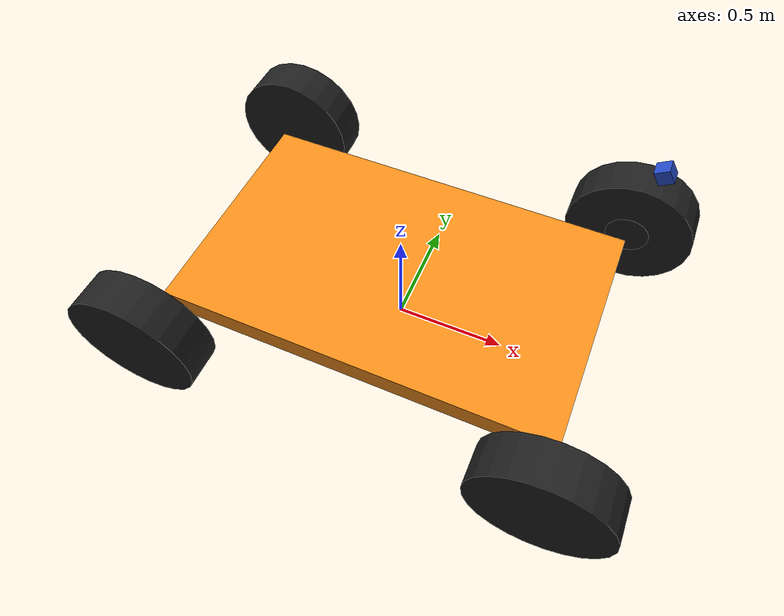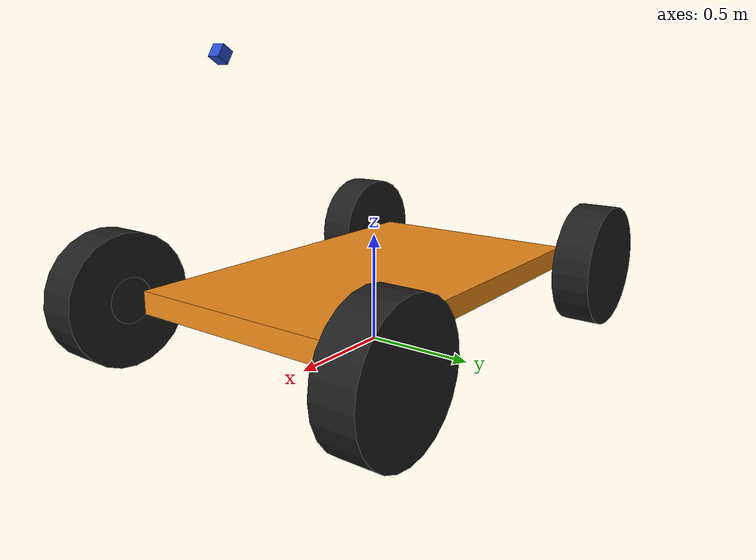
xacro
<?xml version="1.0"?>
<robot name="gem" xmlns:xacro="http://www.ros.org/wiki/xacro">

<!-- Vehicle Dimensions -->
<xacro:property name="wheel_base_length" value="1.753"/>
<xacro:property name="wheel_base_width" value="1.245"/>
<xacro:property name="wheel_diameter" value="0.584"/>
<xacro:property name="wheel_thickness" value="0.178"/>

<!-- Macros -->
<xacro:macro name="wheel" params="name radius width material caster_offset mass">
  <link name="${name}">
		<collision>
		  <origin xyz="0 0 0" rpy="0 1.5708 1.5708" />
		  <geometry>
		   <cylinder length="${width}" radius="${radius}"/>
		  </geometry>
		</collision>
		<visual>
		  <origin xyz="0 0 0" rpy="0 1.5708 1.5708" />
		  <geometry>
			<cylinder length="${width}" radius="${radius}"/>
		  </geometry>
		  <material name="black"/>
		</visual>
		<inertial>
		  <origin xyz="0 0 0" rpy="0 1.5708 1.5708" />
		  <mass value="0.2"/>
      <cylinder_inirtia m="${mass}" r="${radius}" h="${width}" />
	  </inertial>
	</link>
  <gazebo reference="${name}">
    <mu1 value="2.0"/>
    <mu2 value="2.0"/>
    <kp  value="10000000.0" />
    <kd  value="1.0" />
    <fdir1 value="0 1 0"/>
    <material>${material}</material>
  </gazebo>
</xacro:macro>

<xacro:macro name="wheel_steer" params="lr lr_reflect">
  <xacro:wheel name="${lr}" radius="${wheel_diameter/2}" width="${wheel_thickness}" material="Gazebo/Blue" caster_offset="0" mass="6"/>
  <xacro:wheel name="${lr}_assembly" radius="0.1" width="0.001" material="Gazebo/White" caster_offset="-.5" mass="0.5" />

  <joint name="${lr}_hinge" type="revolute">
    <parent link="chassis"/>
    <child link="${lr}_assembly"/>
    <origin xyz="${wheel_base_length/2} ${lr_reflect*(wheel_base_width/2)} ${wheel_diameter/2}" rpy="0 0 0" />
    <axis xyz="0 0 1" rpy="0 0 0" />
    <limit effort="100" velocity="1" lower="-1" upper="1"/>
    <dynamics damping="0.0" friction="0.0"/>
  </joint>
  <joint name="${lr}_rotate" type="continuous">
    <parent link="${lr}_assembly"/>
    <child link="${lr}"/>
    <origin xyz="0.0 ${lr_reflect*(wheel_thickness/2)} 0.0" rpy="0 0 0" />
    <axis xyz="0 1 0" rpy="0 0 0" />
    <limit effort="100" velocity="50"/>
    <dynamics damping="0.0" friction="0.0"/>
  </joint>
  <transmission name="trans_${lr}_hing">
    <type>transmission_interface/SimpleTransmission</type>
    <joint name="${lr}_hinge">
      <hardwareInterface>EffortJointInterface</hardwareInterface>
    </joint>
    <actuator name="motor_${lr}_front">
      <hardwareInterface>EffortJointInterface</hardwareInterface>
      <mechanicalReduction>1</mechanicalReduction>
    </actuator>
  </transmission>
  <transmission name="trans_${lr}_rotate">
    <type>transmission_interface/SimpleTransmission</type>
    <joint name="${lr}_rotate">
      <hardwareInterface>EffortJointInterface</hardwareInterface>
    </joint>
    <actuator name="motor_${lr}_rotate">
      <hardwareInterface>EffortJointInterface</hardwareInterface>
      <mechanicalReduction>1</mechanicalReduction>
    </actuator>
  </transmission>
</xacro:macro>

<xacro:macro name="rear_wheel" params="lr lr_reflect">
  <xacro:wheel name="${lr}" radius="${wheel_diameter/2}" width="${wheel_thickness}" material="Gazebo/Blue" caster_offset="0" mass="6" />

  <joint name="${lr}_rotate" type="continuous">
    <parent link="chassis"/>
    <child link="${lr}"/>
    <origin xyz="${-wheel_base_length/2} ${lr_reflect*((wheel_base_width/2)+(wheel_thickness/2))} ${wheel_diameter/2}" rpy="0 0 0" />
    <axis xyz="0 1 0" rpy="0 0 0" />
    <limit effort="0" velocity="0"/>
    <dynamics damping="0.0" friction="0.0"/>
  </joint>

</xacro:macro>

  <macro name="box_inertia" params="x y z m">
		<inertia  ixx="${m*(y*y+z*z)/12}" ixy = "0" ixz = "0"
		          iyy="${m*(x*x+z*z)/12}" iyz = "0"
		          izz="${m*(x*x+z*z)/12}" />
	</macro>
  <macro name="cylinder_inirtia" params="m r h">
    <inertia  ixx="${(m*((3*r*r)+(h*h)))/12}" ixy = "0" ixz = "0"
              iyy="${(m*((3*r*r)+(h*h)))/12}" iyz = "0"
              izz="${(m*r*r)/2}" />
  </macro>

<!-- Macros End -->

    <!-- Base link -->
  <link name="base_link">
    <visual>
      <geometry>
        <box size="0.01 0.01 0.01"/>
      </geometry>
    </visual>
  </link>

	<!-- Chassis START-->
  <joint name="base_joint" type="fixed">
    <parent link="base_link"/>
    <child link="chassis"/>
  </joint>

  <link name="chassis">
    <collision>
      <origin xyz="0 0 ${wheel_diameter/2}" rpy="0 0 0"/>
      <geometry>
            <box size="${wheel_base_length} ${wheel_base_width-wheel_thickness} 0.1"/>
      </geometry>
    </collision>
    <visual>
      <origin xyz="0 0 0.3" rpy="0 0 0"/>
      <geometry>
         <box size="${wheel_base_length} ${wheel_base_width-wheel_thickness} 0.1"/>
      </geometry>
      <material name="orange"/>
    </visual>
    <inertial>
      <mass value="1"/>
      <origin xyz="0 0 0.3" rpy="0 0 0"/>
      <box_inertia x="${wheel_base_length}" y="${wheel_base_width-wheel_thickness}" z=".1" m="1" />
    </inertial>
  </link>

  <gazebo reference="chassis">
    <!--Stiffness -->
    <kp>1000000.0</kp>
    <!--Dampening-->
    <kd>0.1</kd>
    <dampingFactor>0</dampingFactor>
    <material>Gazebo/White</material>
    <selfCollide>true</selfCollide>
    <turnGravityOff>false</turnGravityOff>
    <mu1 value="0.1"/>
    <mu2 value="0.1"/>
    <fdir1 value="0 0 0"/>
  </gazebo>
	<!-- Chassis END -->

  <xacro:wheel_steer lr="right_wheel" lr_reflect="-1" />
  <xacro:wheel_steer lr="left_wheel" lr_reflect="1" />
  <xacro:rear_wheel lr="right_wheel_rear" lr_reflect="-1" />
  <xacro:rear_wheel lr="left_wheel_rear" lr_reflect="1" />

  <gazebo>
		<plugin name="gazebo_ros_control" filename="libgazebo_ros_control.so">
		  <robotNamespace>/ack</robotNamespace>
			<legacyModeNS>true</legacyModeNS>
		</plugin>
	</gazebo>

  	<!-- Camera -->
	<!-- You can adjust the camera angle with the p in rpy, measured in radians. -->
	<!-- You can also increate the height of the camera by adding a number, in meters, -->
	<!-- to the z in xyz. For example, to simulate a camera mounted on a 1/2 meter post, -->
	<!-- we can replace the z value with ${wheelRadius+chassisHeight+0.5} -->
  <joint name="camera_joint" type="fixed">
    <origin xyz="${wheel_base_length/2} 0 ${(wheel_diameter/2)+1}" rpy="0 1.0 0"/>
    <parent link="chassis"/>
    <child link="camera"/>
  </joint>

  <link name="camera">
    <collision>
      <origin xyz="0 0 0" rpy="0 0 0"/>
      <geometry>
	<box size=".05 .05 .05"/>
      </geometry>
    </collision>

    <visual>
      <origin xyz="0 0 0" rpy="0 0 0"/>
      <geometry>
	<box size=".05 .05 .05"/>
      </geometry>
      <material name="blue"/>
    </visual>

    <inertial>
      <mass value="0.05" />
      <origin xyz="0 0 0" rpy="0 0 0"/>
      <box_inertia x=".05" y=".05" z=".05" m="0.05" />
    </inertial>
  </link>

 <gazebo reference="camera">
  <material>Gazebo/Blue</material>
  <sensor type="camera" name="camera1">
      <update_rate>30.0</update_rate>
      <camera name="head">
        <horizontal_fov>1.3962634</horizontal_fov>
        <image>
          <width>1600</width>
          <height>1600</height>
          <format>R8G8B8</format>
        </image>
        <clip>
          <near>0.02</near>
          <far>300</far>
        </clip>
      </camera>
      <plugin name="camera_controller" filename="libgazebo_ros_camera.so">
        <alwaysOn>true</alwaysOn>
        <updateRate>0.0</updateRate>
        <cameraName>camera1</cameraName>
        <imageTopicName>image_raw</imageTopicName>
        <cameraInfoTopicName>camera_info</cameraInfoTopicName>
        <frameName>camera_link</frameName>
        <hackBaseline>0.07</hackBaseline>
        <distortionK1>0.0</distortionK1>
        <distortionK2>0.0</distortionK2>
        <distortionK3>0.0</distortionK3>
        <distortionT1>0.0</distortionT1>
        <distortionT2>0.0</distortionT2>
      </plugin>
    </sensor>
 </gazebo>

</robot>
